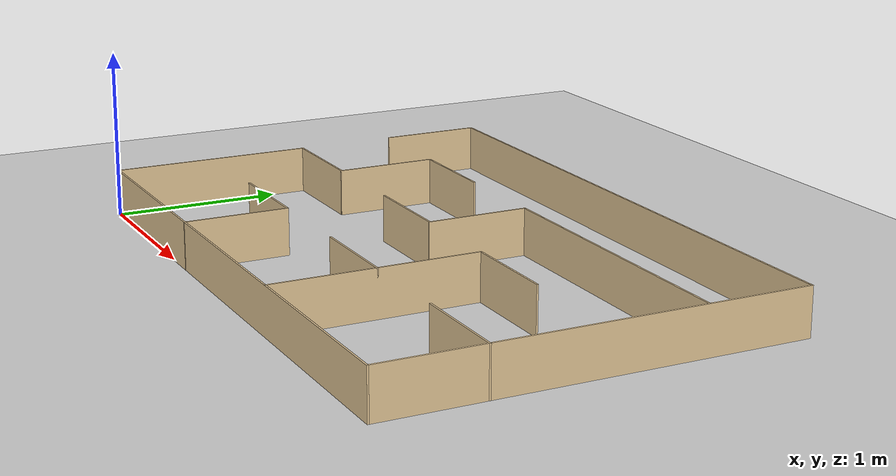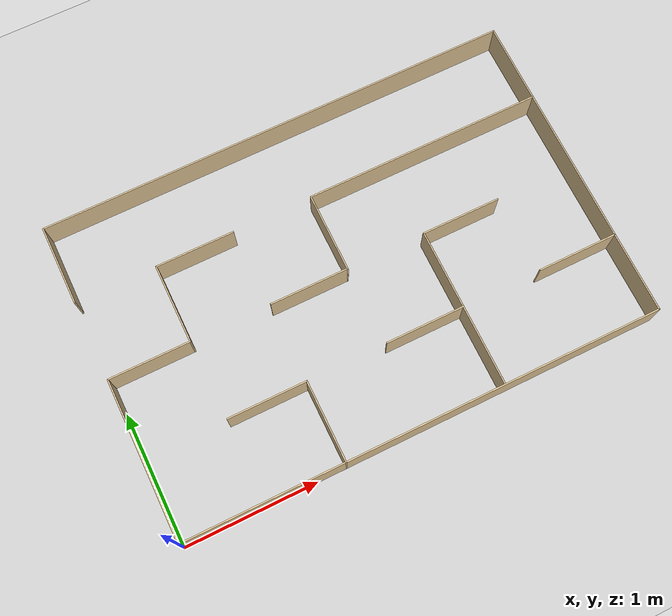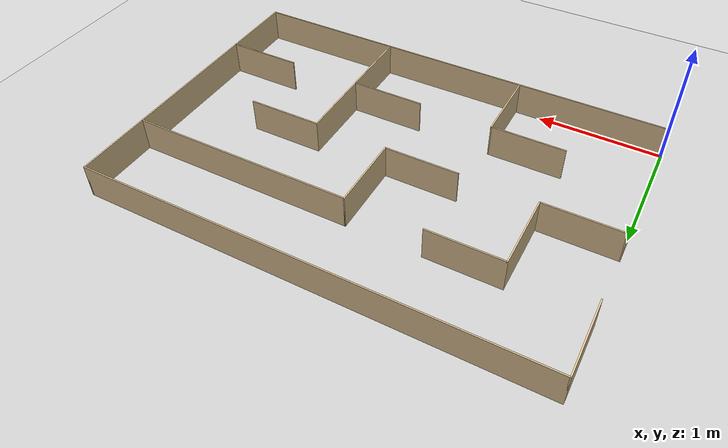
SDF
<sdf version="1.4">
 <world name="default">
  <scene><ambient>0.5 0.5 0.5 1.0</ambient><shadows>0</shadows></scene>
  <include><uri>model://ground_plane</uri></include>
  <include><uri>model://sun</uri></include>
  <model name="labyrinth_hard">
   <pose>1.81 1.21 0 0 -0 0</pose>
   <link name="Wall_0">
    <collision name="Wall_0_Collision">
     <geometry><box><size>1.22 0.01 0.28</size></box></geometry>
     <pose>0 0 0.14 0 -0 0</pose>
    </collision>
    <visual name="Wall_0_Visual">
     <pose>0 0 0.14 0 -0 0</pose>
     <geometry><box><size>1.22 0.01 0.28</size></box></geometry>
     <material>
      <script><uri>file://media/materials/scripts/gazebo.material</uri><name>Gazebo/Grey</name></script>
      <ambient>0.921569 0.807843 0.615686 1</ambient>
     </material>
     <meta><layer>0</layer></meta>
    </visual>
    <pose>-1.81 -0.605 0 0 -0 1.5708</pose>
   </link>
   <link name="Wall_10">
    <collision name="Wall_10_Collision">
     <geometry><box><size>0.62 0.01 0.28</size></box></geometry>
     <pose>0 0 0.14 0 -0 0</pose>
    </collision>
    <visual name="Wall_10_Visual">
     <pose>0 0 0.14 0 -0 0</pose>
     <geometry><box><size>0.62 0.01 0.28</size></box></geometry>
     <material>
      <script><uri>file://media/materials/scripts/gazebo.material</uri><name>Gazebo/Grey</name></script>
      <ambient>0.921569 0.807843 0.615686 1</ambient>
     </material>
     <meta><layer>0</layer></meta>
    </visual>
    <pose>-1.505 0 0 0 -0 0</pose>
   </link>
   <link name="Wall_12">
    <collision name="Wall_12_Collision">
     <geometry><box><size>0.61 0.01 0.28</size></box></geometry>
     <pose>0 0 0.14 0 -0 0</pose>
    </collision>
    <visual name="Wall_12_Visual">
     <pose>0 0 0.14 0 -0 0</pose>
     <geometry><box><size>0.61 0.01 0.28</size></box></geometry>
     <material>
      <script><uri>file://media/materials/scripts/gazebo.material</uri><name>Gazebo/Grey</name></script>
      <ambient>0.921569 0.807843 0.615686 1</ambient>
     </material>
     <meta><layer>0</layer></meta>
    </visual>
    <pose>-1.2 0.3 0 0 -0 1.5708</pose>
   </link>
   <link name="Wall_14">
    <collision name="Wall_14_Collision">
     <geometry><box><size>0.6 0.01 0.28</size></box></geometry>
     <pose>0 0 0.14 0 -0 0</pose>
    </collision>
    <visual name="Wall_14_Visual">
     <pose>0 0 0.14 0 -0 0</pose>
     <geometry><box><size>0.6 0.01 0.28</size></box></geometry>
     <material>
      <script><uri>file://media/materials/scripts/gazebo.material</uri><name>Gazebo/Grey</name></script>
      <ambient>0.921569 0.807843 0.615686 1</ambient>
     </material>
     <meta><layer>0</layer></meta>
    </visual>
    <pose>-0.905 0.6 0 0 -0 0</pose>
   </link>
   <link name="Wall_16">
    <collision name="Wall_16_Collision">
     <geometry><box><size>0.6 0.01 0.28</size></box></geometry>
     <pose>0 0 0.14 0 -0 0</pose>
    </collision>
    <visual name="Wall_16_Visual">
     <pose>0 0 0.14 0 -0 0</pose>
     <geometry><box><size>0.6 0.01 0.28</size></box></geometry>
     <material>
      <script><uri>file://media/materials/scripts/gazebo.material</uri><name>Gazebo/Grey</name></script>
      <ambient>0.921569 0.807843 0.615686 1</ambient>
     </material>
     <meta><layer>0</layer></meta>
    </visual>
    <pose>-0.895 -0.6 0 0 -0 0</pose>
   </link>
   <link name="Wall_18">
    <collision name="Wall_18_Collision">
     <geometry><box><size>0.62 0.01 0.28</size></box></geometry>
     <pose>0 0 0.14 0 -0 0</pose>
    </collision>
    <visual name="Wall_18_Visual">
     <pose>0 0 0.14 0 -0 0</pose>
     <geometry><box><size>0.62 0.01 0.28</size></box></geometry>
     <material>
      <script><uri>file://media/materials/scripts/gazebo.material</uri><name>Gazebo/Grey</name></script>
      <ambient>0.921569 0.807843 0.615686 1</ambient>
     </material>
     <meta><layer>0</layer></meta>
    </visual>
    <pose>-0.6 -0.905 0 0 0 -1.5708</pose>
   </link>
   <link name="Wall_2">
    <collision name="Wall_2_Collision">
     <geometry><box><size>0.61 0.01 0.28</size></box></geometry>
     <pose>0 0 0.14 0 -0 0</pose>
    </collision>
    <visual name="Wall_2_Visual">
     <pose>0 0 0.14 0 -0 0</pose>
     <geometry><box><size>0.61 0.01 0.28</size></box></geometry>
     <material>
      <script><uri>file://media/materials/scripts/gazebo.material</uri><name>Gazebo/Grey</name></script>
      <ambient>0.921569 0.807843 0.615686 1</ambient>
     </material>
     <meta><layer>0</layer></meta>
    </visual>
    <pose>-1.81 0.91 0 0 -0 1.5708</pose>
   </link>
   <link name="Wall_20">
    <collision name="Wall_20_Collision">
     <geometry><box><size>0.6 0.01 0.28</size></box></geometry>
     <pose>0 0 0.14 0 -0 0</pose>
    </collision>
    <visual name="Wall_20_Visual">
     <pose>0 0 0.14 0 -0 0</pose>
     <geometry><box><size>0.6 0.01 0.28</size></box></geometry>
     <material>
      <script><uri>file://media/materials/scripts/gazebo.material</uri><name>Gazebo/Grey</name></script>
      <ambient>0.921569 0.807843 0.615686 1</ambient>
     </material>
     <meta><layer>0</layer></meta>
    </visual>
    <pose>-0.295 0 0 0 -0 0</pose>
   </link>
   <link name="Wall_22">
    <collision name="Wall_22_Collision">
     <geometry><box><size>0.61 0.01 0.28</size></box></geometry>
     <pose>0 0 0.14 0 -0 0</pose>
    </collision>
    <visual name="Wall_22_Visual">
     <pose>0 0 0.14 0 -0 0</pose>
     <geometry><box><size>0.61 0.01 0.28</size></box></geometry>
     <material>
      <script><uri>file://media/materials/scripts/gazebo.material</uri><name>Gazebo/Grey</name></script>
      <ambient>0.921569 0.807843 0.615686 1</ambient>
     </material>
     <meta><layer>0</layer></meta>
    </visual>
    <pose>0 0.3 0 0 -0 1.5708</pose>
   </link>
   <link name="Wall_24">
    <collision name="Wall_24_Collision">
     <geometry><box><size>1.82 0.01 0.28</size></box></geometry>
     <pose>0 0 0.14 0 -0 0</pose>
    </collision>
    <visual name="Wall_24_Visual">
     <pose>0 0 0.14 0 -0 0</pose>
     <geometry><box><size>1.82 0.01 0.28</size></box></geometry>
     <material>
      <script><uri>file://media/materials/scripts/gazebo.material</uri><name>Gazebo/Grey</name></script>
      <ambient>0.921569 0.807843 0.615686 1</ambient>
     </material>
     <meta><layer>0</layer></meta>
    </visual>
    <pose>0.905 0.6 0 0 -0 0</pose>
   </link>
   <link name="Wall_26">
    <collision name="Wall_26_Collision">
     <geometry><box><size>0.6 0.01 0.28</size></box></geometry>
     <pose>0 0 0.14 0 -0 0</pose>
    </collision>
    <visual name="Wall_26_Visual">
     <pose>0 0 0.14 0 -0 0</pose>
     <geometry><box><size>0.6 0.01 0.28</size></box></geometry>
     <material>
      <script><uri>file://media/materials/scripts/gazebo.material</uri><name>Gazebo/Grey</name></script>
      <ambient>0.921569 0.807843 0.615686 1</ambient>
     </material>
     <meta><layer>0</layer></meta>
    </visual>
    <pose>0.305 -0.6 0 0 -0 0</pose>
   </link>
   <link name="Wall_28">
    <collision name="Wall_28_Collision">
     <geometry><box><size>1.22 0.01 0.28</size></box></geometry>
     <pose>0 0 0.14 0 -0 0</pose>
    </collision>
    <visual name="Wall_28_Visual">
     <pose>0 0 0.14 0 -0 0</pose>
     <geometry><box><size>1.22 0.01 0.28</size></box></geometry>
     <material>
      <script><uri>file://media/materials/scripts/gazebo.material</uri><name>Gazebo/Grey</name></script>
      <ambient>0.921569 0.807843 0.615686 1</ambient>
     </material>
     <meta><layer>0</layer></meta>
    </visual>
    <pose>0.6 -0.605 0 0 -0 1.5708</pose>
   </link>
   <link name="Wall_30">
    <collision name="Wall_30_Collision">
     <geometry><box><size>0.6 0.01 0.28</size></box></geometry>
     <pose>0 0 0.14 0 -0 0</pose>
    </collision>
    <visual name="Wall_30_Visual">
     <pose>0 0 0.14 0 -0 0</pose>
     <geometry><box><size>0.6 0.01 0.28</size></box></geometry>
     <material>
      <script><uri>file://media/materials/scripts/gazebo.material</uri><name>Gazebo/Grey</name></script>
      <ambient>0.921569 0.807843 0.615686 1</ambient>
     </material>
     <meta><layer>0</layer></meta>
    </visual>
    <pose>0.895 0 0 0 -0 0</pose>
   </link>
   <link name="Wall_32">
    <collision name="Wall_32_Collision">
     <geometry><box><size>0.61 0.01 0.28</size></box></geometry>
     <pose>0 0 0.14 0 -0 0</pose>
    </collision>
    <visual name="Wall_32_Visual">
     <pose>0 0 0.14 0 -0 0</pose>
     <geometry><box><size>0.61 0.01 0.28</size></box></geometry>
     <material>
      <script><uri>file://media/materials/scripts/gazebo.material</uri><name>Gazebo/Grey</name></script>
      <ambient>0.921569 0.807843 0.615686 1</ambient>
     </material>
     <meta><layer>0</layer></meta>
    </visual>
    <pose>1.51 -0.6 0 0 -0 3.14159</pose>
   </link>
   <link name="Wall_4">
    <collision name="Wall_4_Collision">
     <geometry><box><size>3.63 0.01 0.28</size></box></geometry>
     <pose>0 0 0.14 0 -0 0</pose>
    </collision>
    <visual name="Wall_4_Visual">
     <pose>0 0 0.14 0 -0 0</pose>
     <geometry><box><size>3.63 0.01 0.28</size></box></geometry>
     <material>
      <script><uri>file://media/materials/scripts/gazebo.material</uri><name>Gazebo/Grey</name></script>
      <ambient>0.921569 0.807843 0.615686 1</ambient>
     </material>
     <meta><layer>0</layer></meta>
    </visual>
    <pose>0 1.21 0 0 -0 0</pose>
   </link>
   <link name="Wall_6">
    <collision name="Wall_6_Collision">
     <geometry><box><size>2.43 0.01 0.28</size></box></geometry>
     <pose>0 0 0.14 0 -0 0</pose>
    </collision>
    <visual name="Wall_6_Visual">
     <pose>0 0 0.14 0 -0 0</pose>
     <geometry><box><size>2.43 0.01 0.28</size></box></geometry>
     <material>
      <script><uri>file://media/materials/scripts/gazebo.material</uri><name>Gazebo/Grey</name></script>
      <ambient>0.921569 0.807843 0.615686 1</ambient>
     </material>
     <meta><layer>0</layer></meta>
    </visual>
    <pose>1.81 0 0 0 0 -1.5708</pose>
   </link>
   <link name="Wall_8">
    <collision name="Wall_8_Collision">
     <geometry><box><size>3.63 0.01 0.28</size></box></geometry>
     <pose>0 0 0.14 0 -0 0</pose>
    </collision>
    <visual name="Wall_8_Visual">
     <pose>0 0 0.14 0 -0 0</pose>
     <geometry><box><size>3.63 0.01 0.28</size></box></geometry>
     <material>
      <script><uri>file://media/materials/scripts/gazebo.material</uri><name>Gazebo/Grey</name></script>
      <ambient>0.921569 0.807843 0.615686 1</ambient>
     </material>
     <meta><layer>0</layer></meta>
    </visual>
    <pose>0 -1.21 0 0 -0 3.14159</pose>
   </link>
   <static>1</static>
  </model>
 </world>
</sdf>
